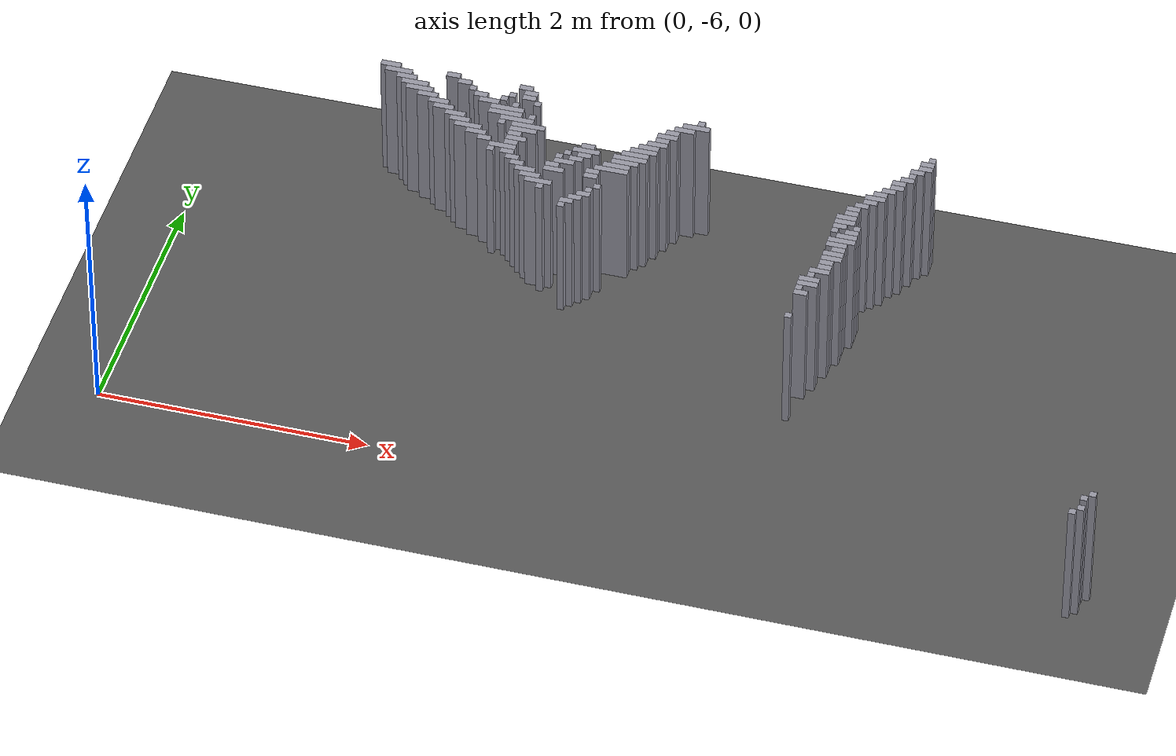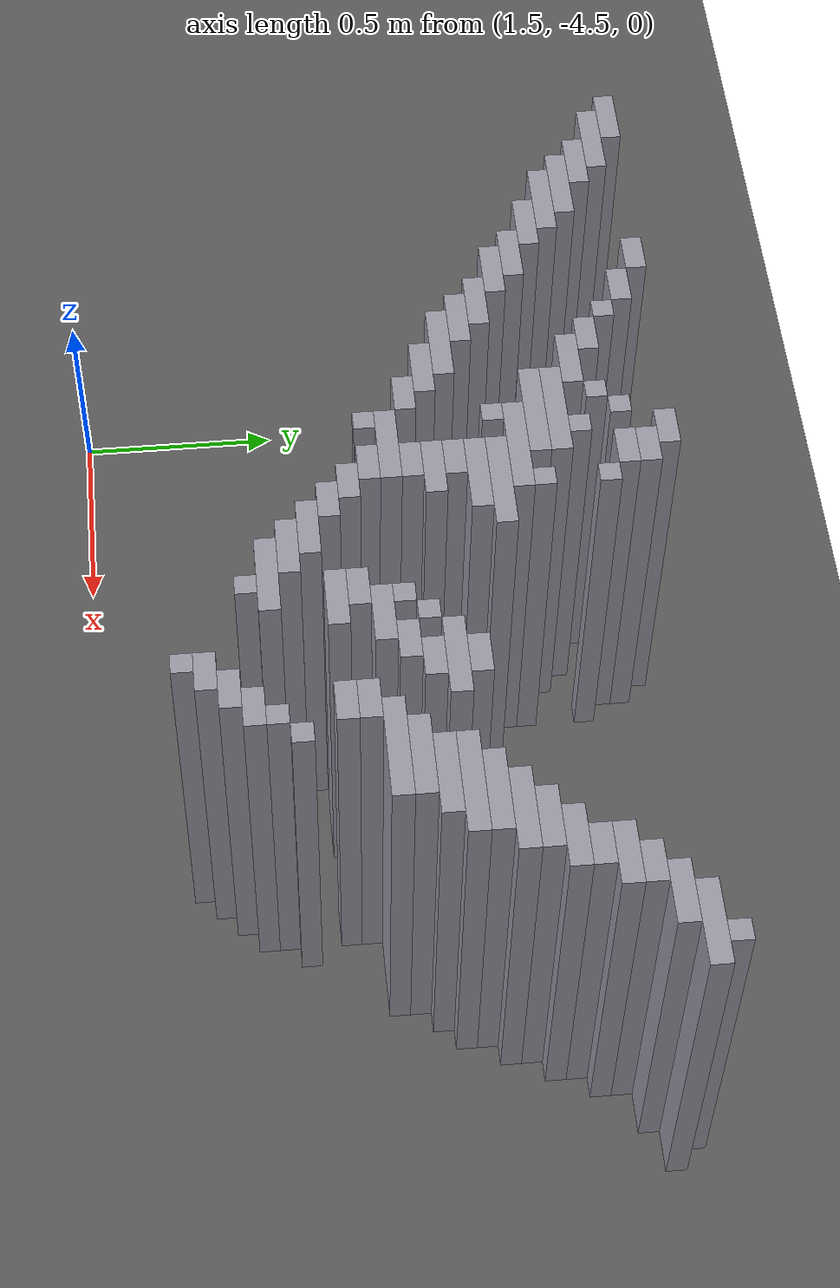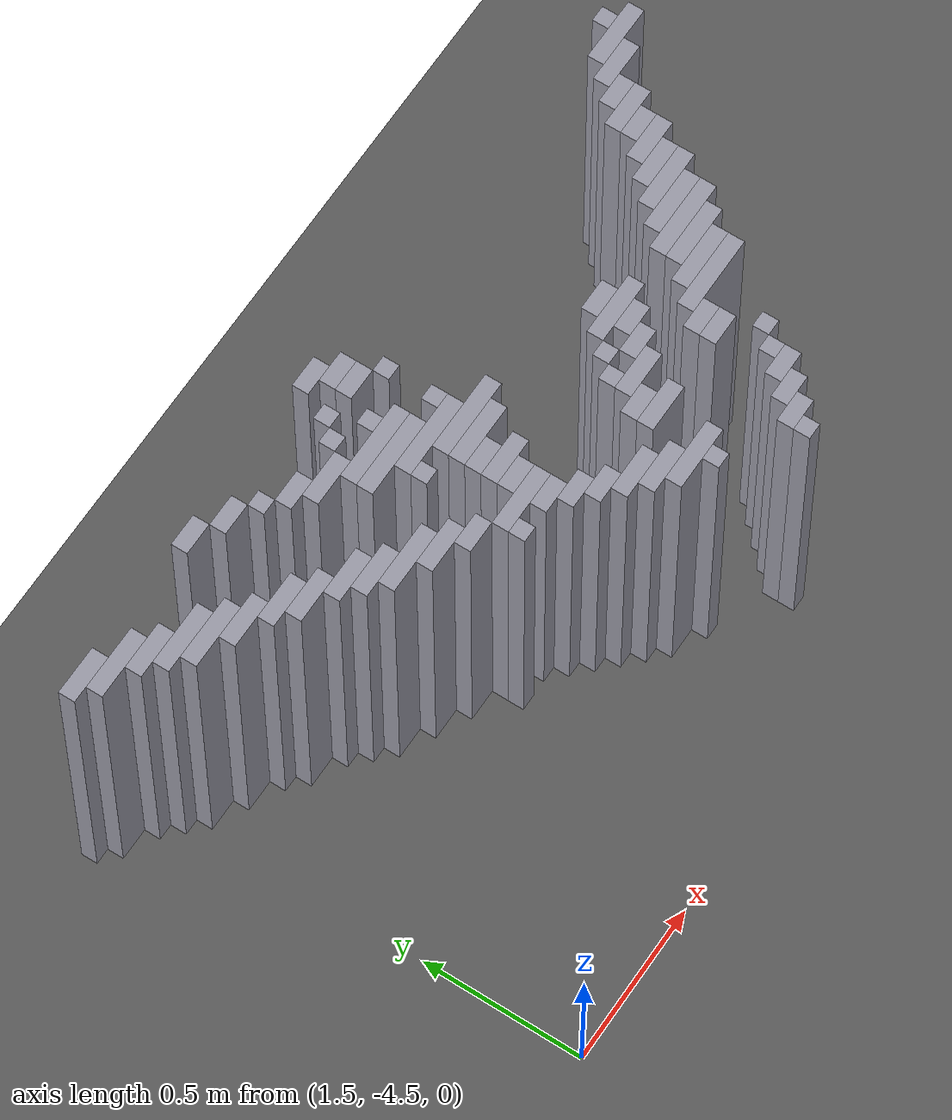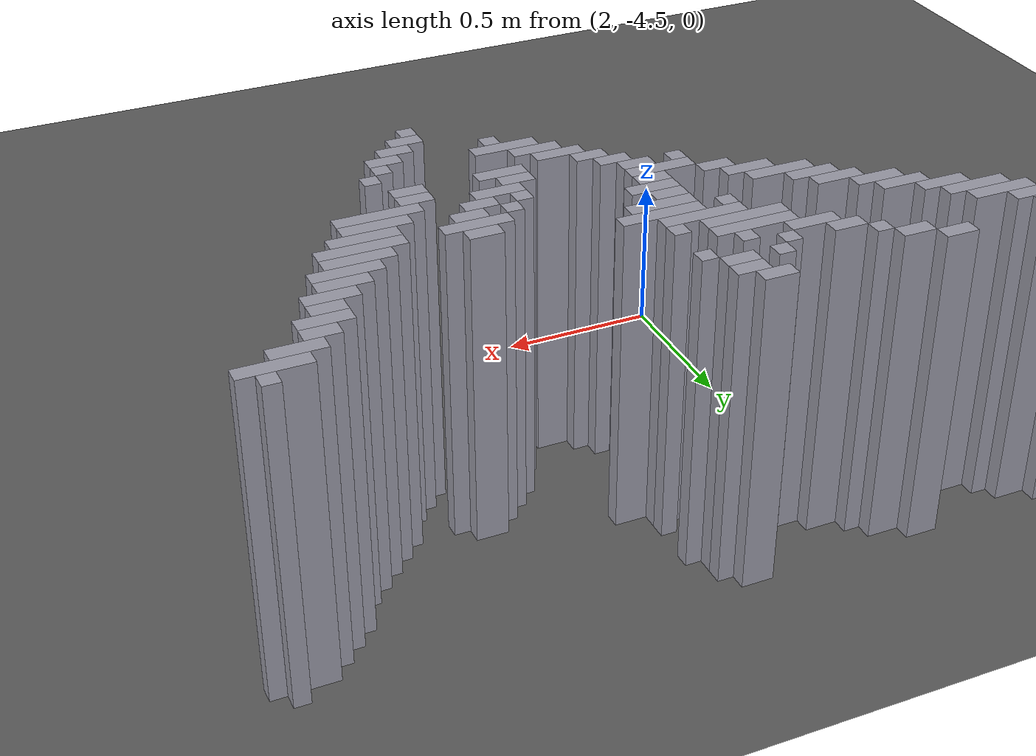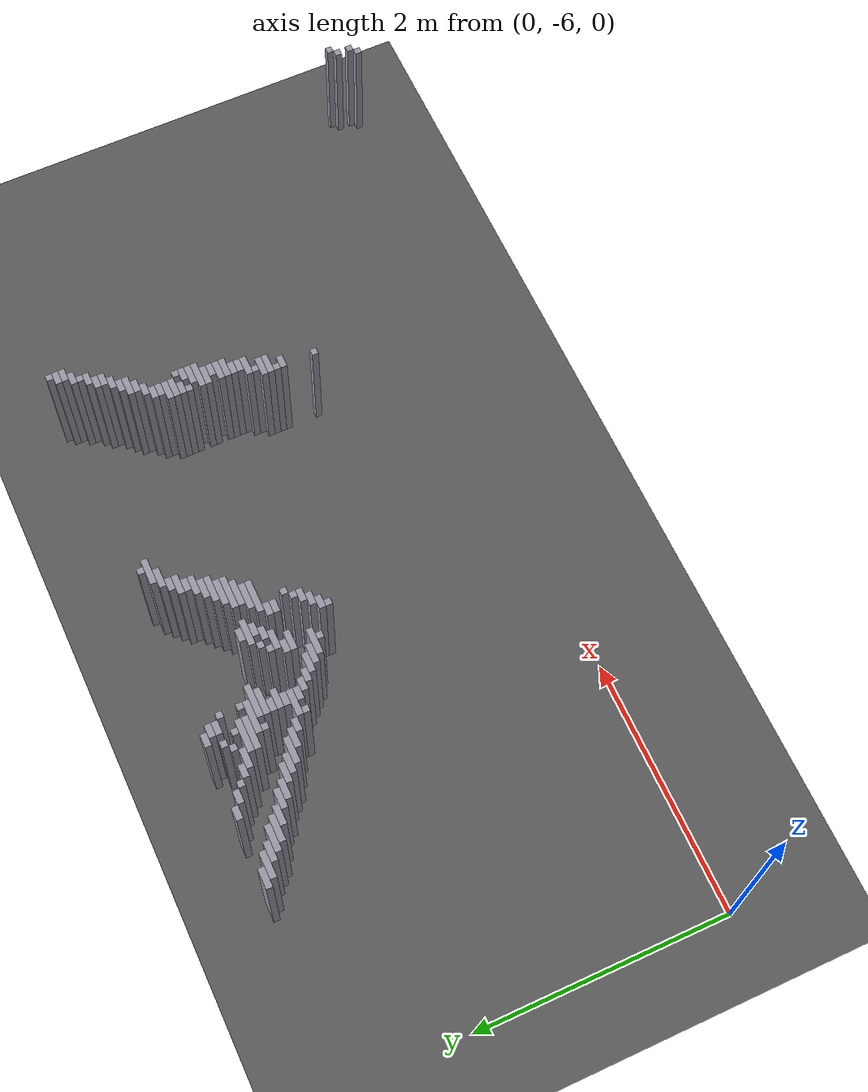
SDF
<sdf version="1.8">
 <world name="dimi">
  <model name="ground">
   <static>true</static>
   <link name="ground_link">
    <collision name="c"><geometry><plane><normal>0 0 1</normal><size>60 60</size></plane></geometry></collision>
    <visual name="v">
     <geometry><plane><normal>0 0 1</normal><size>60 60</size></plane></geometry>
     <material><ambient>0.3 0.3 0.3 1</ambient><diffuse>0.35 0.35 0.35 1</diffuse></material>
    </visual>
   </link>
  </model>
  <model name="walls">
   <static>true</static>
   <link name="wall_413">
    <pose>1.3350 -3.0950 0.5000 0 0 0</pose>
    <collision name="c"><geometry><box><size>0.1500 0.0500 1.0000</size></box></geometry></collision>
    <visual name="v">
     <geometry><box><size>0.1500 0.0500 1.0000</size></box></geometry>
     <material><ambient>0.5 0.5 0.55 1</ambient><diffuse>0.6 0.6 0.65 1</diffuse></material>
    </visual>
   </link>
   <link name="wall_414">
    <pose>1.8100 -3.0950 0.5000 0 0 0</pose>
    <collision name="c"><geometry><box><size>0.1000 0.0500 1.0000</size></box></geometry></collision>
    <visual name="v">
     <geometry><box><size>0.1000 0.0500 1.0000</size></box></geometry>
     <material><ambient>0.5 0.5 0.55 1</ambient><diffuse>0.6 0.6 0.65 1</diffuse></material>
    </visual>
   </link>
   <link name="wall_415">
    <pose>2.3600 -3.0950 0.5000 0 0 0</pose>
    <collision name="c"><geometry><box><size>0.1000 0.0500 1.0000</size></box></geometry></collision>
    <visual name="v">
     <geometry><box><size>0.1000 0.0500 1.0000</size></box></geometry>
     <material><ambient>0.5 0.5 0.55 1</ambient><diffuse>0.6 0.6 0.65 1</diffuse></material>
    </visual>
   </link>
   <link name="wall_416">
    <pose>5.3850 -3.0950 0.5000 0 0 0</pose>
    <collision name="c"><geometry><box><size>0.0500 0.0500 1.0000</size></box></geometry></collision>
    <visual name="v">
     <geometry><box><size>0.0500 0.0500 1.0000</size></box></geometry>
     <material><ambient>0.5 0.5 0.55 1</ambient><diffuse>0.6 0.6 0.65 1</diffuse></material>
    </visual>
   </link>
   <link name="wall_418">
    <pose>1.4100 -3.1450 0.5000 0 0 0</pose>
    <collision name="c"><geometry><box><size>0.2000 0.0500 1.0000</size></box></geometry></collision>
    <visual name="v">
     <geometry><box><size>0.2000 0.0500 1.0000</size></box></geometry>
     <material><ambient>0.5 0.5 0.55 1</ambient><diffuse>0.6 0.6 0.65 1</diffuse></material>
    </visual>
   </link>
   <link name="wall_419">
    <pose>1.9100 -3.1450 0.5000 0 0 0</pose>
    <collision name="c"><geometry><box><size>0.1000 0.0500 1.0000</size></box></geometry></collision>
    <visual name="v">
     <geometry><box><size>0.1000 0.0500 1.0000</size></box></geometry>
     <material><ambient>0.5 0.5 0.55 1</ambient><diffuse>0.6 0.6 0.65 1</diffuse></material>
    </visual>
   </link>
   <link name="wall_420">
    <pose>2.4100 -3.1450 0.5000 0 0 0</pose>
    <collision name="c"><geometry><box><size>0.1000 0.0500 1.0000</size></box></geometry></collision>
    <visual name="v">
     <geometry><box><size>0.1000 0.0500 1.0000</size></box></geometry>
     <material><ambient>0.5 0.5 0.55 1</ambient><diffuse>0.6 0.6 0.65 1</diffuse></material>
    </visual>
   </link>
   <link name="wall_421">
    <pose>3.6850 -3.1450 0.5000 0 0 0</pose>
    <collision name="c"><geometry><box><size>0.0500 0.0500 1.0000</size></box></geometry></collision>
    <visual name="v">
     <geometry><box><size>0.0500 0.0500 1.0000</size></box></geometry>
     <material><ambient>0.5 0.5 0.55 1</ambient><diffuse>0.6 0.6 0.65 1</diffuse></material>
    </visual>
   </link>
   <link name="wall_422">
    <pose>5.3600 -3.1450 0.5000 0 0 0</pose>
    <collision name="c"><geometry><box><size>0.1000 0.0500 1.0000</size></box></geometry></collision>
    <visual name="v">
     <geometry><box><size>0.1000 0.0500 1.0000</size></box></geometry>
     <material><ambient>0.5 0.5 0.55 1</ambient><diffuse>0.6 0.6 0.65 1</diffuse></material>
    </visual>
   </link>
   <link name="wall_427">
    <pose>1.4850 -3.1950 0.5000 0 0 0</pose>
    <collision name="c"><geometry><box><size>0.1500 0.0500 1.0000</size></box></geometry></collision>
    <visual name="v">
     <geometry><box><size>0.1500 0.0500 1.0000</size></box></geometry>
     <material><ambient>0.5 0.5 0.55 1</ambient><diffuse>0.6 0.6 0.65 1</diffuse></material>
    </visual>
   </link>
   <link name="wall_428">
    <pose>1.9850 -3.1950 0.5000 0 0 0</pose>
    <collision name="c"><geometry><box><size>0.0500 0.0500 1.0000</size></box></geometry></collision>
    <visual name="v">
     <geometry><box><size>0.0500 0.0500 1.0000</size></box></geometry>
     <material><ambient>0.5 0.5 0.55 1</ambient><diffuse>0.6 0.6 0.65 1</diffuse></material>
    </visual>
   </link>
   <link name="wall_429">
    <pose>2.2850 -3.1950 0.5000 0 0 0</pose>
    <collision name="c"><geometry><box><size>0.0500 0.0500 1.0000</size></box></geometry></collision>
    <visual name="v">
     <geometry><box><size>0.0500 0.0500 1.0000</size></box></geometry>
     <material><ambient>0.5 0.5 0.55 1</ambient><diffuse>0.6 0.6 0.65 1</diffuse></material>
    </visual>
   </link>
   <link name="wall_430">
    <pose>2.4100 -3.1950 0.5000 0 0 0</pose>
    <collision name="c"><geometry><box><size>0.1000 0.0500 1.0000</size></box></geometry></collision>
    <visual name="v">
     <geometry><box><size>0.1000 0.0500 1.0000</size></box></geometry>
     <material><ambient>0.5 0.5 0.55 1</ambient><diffuse>0.6 0.6 0.65 1</diffuse></material>
    </visual>
   </link>
   <link name="wall_431">
    <pose>3.6600 -3.1950 0.5000 0 0 0</pose>
    <collision name="c"><geometry><box><size>0.2000 0.0500 1.0000</size></box></geometry></collision>
    <visual name="v">
     <geometry><box><size>0.2000 0.0500 1.0000</size></box></geometry>
     <material><ambient>0.5 0.5 0.55 1</ambient><diffuse>0.6 0.6 0.65 1</diffuse></material>
    </visual>
   </link>
   <link name="wall_432">
    <pose>5.3600 -3.1950 0.5000 0 0 0</pose>
    <collision name="c"><geometry><box><size>0.1000 0.0500 1.0000</size></box></geometry></collision>
    <visual name="v">
     <geometry><box><size>0.1000 0.0500 1.0000</size></box></geometry>
     <material><ambient>0.5 0.5 0.55 1</ambient><diffuse>0.6 0.6 0.65 1</diffuse></material>
    </visual>
   </link>
   <link name="wall_437">
    <pose>1.5600 -3.2450 0.5000 0 0 0</pose>
    <collision name="c"><geometry><box><size>0.2000 0.0500 1.0000</size></box></geometry></collision>
    <visual name="v">
     <geometry><box><size>0.2000 0.0500 1.0000</size></box></geometry>
     <material><ambient>0.5 0.5 0.55 1</ambient><diffuse>0.6 0.6 0.65 1</diffuse></material>
    </visual>
   </link>
   <link name="wall_438">
    <pose>2.0600 -3.2450 0.5000 0 0 0</pose>
    <collision name="c"><geometry><box><size>0.1000 0.0500 1.0000</size></box></geometry></collision>
    <visual name="v">
     <geometry><box><size>0.1000 0.0500 1.0000</size></box></geometry>
     <material><ambient>0.5 0.5 0.55 1</ambient><diffuse>0.6 0.6 0.65 1</diffuse></material>
    </visual>
   </link>
   <link name="wall_439">
    <pose>2.2350 -3.2450 0.5000 0 0 0</pose>
    <collision name="c"><geometry><box><size>0.0500 0.0500 1.0000</size></box></geometry></collision>
    <visual name="v">
     <geometry><box><size>0.0500 0.0500 1.0000</size></box></geometry>
     <material><ambient>0.5 0.5 0.55 1</ambient><diffuse>0.6 0.6 0.65 1</diffuse></material>
    </visual>
   </link>
   <link name="wall_440">
    <pose>2.4850 -3.2450 0.5000 0 0 0</pose>
    <collision name="c"><geometry><box><size>0.0500 0.0500 1.0000</size></box></geometry></collision>
    <visual name="v">
     <geometry><box><size>0.0500 0.0500 1.0000</size></box></geometry>
     <material><ambient>0.5 0.5 0.55 1</ambient><diffuse>0.6 0.6 0.65 1</diffuse></material>
    </visual>
   </link>
   <link name="wall_441">
    <pose>3.5850 -3.2450 0.5000 0 0 0</pose>
    <collision name="c"><geometry><box><size>0.1500 0.0500 1.0000</size></box></geometry></collision>
    <visual name="v">
     <geometry><box><size>0.1500 0.0500 1.0000</size></box></geometry>
     <material><ambient>0.5 0.5 0.55 1</ambient><diffuse>0.6 0.6 0.65 1</diffuse></material>
    </visual>
   </link>
   <link name="wall_442">
    <pose>5.3100 -3.2450 0.5000 0 0 0</pose>
    <collision name="c"><geometry><box><size>0.1000 0.0500 1.0000</size></box></geometry></collision>
    <visual name="v">
     <geometry><box><size>0.1000 0.0500 1.0000</size></box></geometry>
     <material><ambient>0.5 0.5 0.55 1</ambient><diffuse>0.6 0.6 0.65 1</diffuse></material>
    </visual>
   </link>
   <link name="wall_447">
    <pose>1.6100 -3.2950 0.5000 0 0 0</pose>
    <collision name="c"><geometry><box><size>0.2000 0.0500 1.0000</size></box></geometry></collision>
    <visual name="v">
     <geometry><box><size>0.2000 0.0500 1.0000</size></box></geometry>
     <material><ambient>0.5 0.5 0.55 1</ambient><diffuse>0.6 0.6 0.65 1</diffuse></material>
    </visual>
   </link>
   <link name="wall_448">
    <pose>2.1350 -3.2950 0.5000 0 0 0</pose>
    <collision name="c"><geometry><box><size>0.1500 0.0500 1.0000</size></box></geometry></collision>
    <visual name="v">
     <geometry><box><size>0.1500 0.0500 1.0000</size></box></geometry>
     <material><ambient>0.5 0.5 0.55 1</ambient><diffuse>0.6 0.6 0.65 1</diffuse></material>
    </visual>
   </link>
   <link name="wall_449">
    <pose>2.3350 -3.2950 0.5000 0 0 0</pose>
    <collision name="c"><geometry><box><size>0.0500 0.0500 1.0000</size></box></geometry></collision>
    <visual name="v">
     <geometry><box><size>0.0500 0.0500 1.0000</size></box></geometry>
     <material><ambient>0.5 0.5 0.55 1</ambient><diffuse>0.6 0.6 0.65 1</diffuse></material>
    </visual>
   </link>
   <link name="wall_450">
    <pose>3.5100 -3.2950 0.5000 0 0 0</pose>
    <collision name="c"><geometry><box><size>0.1000 0.0500 1.0000</size></box></geometry></collision>
    <visual name="v">
     <geometry><box><size>0.1000 0.0500 1.0000</size></box></geometry>
     <material><ambient>0.5 0.5 0.55 1</ambient><diffuse>0.6 0.6 0.65 1</diffuse></material>
    </visual>
   </link>
   <link name="wall_451">
    <pose>5.2850 -3.2950 0.5000 0 0 0</pose>
    <collision name="c"><geometry><box><size>0.0500 0.0500 1.0000</size></box></geometry></collision>
    <visual name="v">
     <geometry><box><size>0.0500 0.0500 1.0000</size></box></geometry>
     <material><ambient>0.5 0.5 0.55 1</ambient><diffuse>0.6 0.6 0.65 1</diffuse></material>
    </visual>
   </link>
   <link name="wall_455">
    <pose>1.6850 -3.3450 0.5000 0 0 0</pose>
    <collision name="c"><geometry><box><size>0.1500 0.0500 1.0000</size></box></geometry></collision>
    <visual name="v">
     <geometry><box><size>0.1500 0.0500 1.0000</size></box></geometry>
     <material><ambient>0.5 0.5 0.55 1</ambient><diffuse>0.6 0.6 0.65 1</diffuse></material>
    </visual>
   </link>
   <link name="wall_456">
    <pose>2.2850 -3.3450 0.5000 0 0 0</pose>
    <collision name="c"><geometry><box><size>0.2500 0.0500 1.0000</size></box></geometry></collision>
    <visual name="v">
     <geometry><box><size>0.2500 0.0500 1.0000</size></box></geometry>
     <material><ambient>0.5 0.5 0.55 1</ambient><diffuse>0.6 0.6 0.65 1</diffuse></material>
    </visual>
   </link>
   <link name="wall_457">
    <pose>3.4850 -3.3450 0.5000 0 0 0</pose>
    <collision name="c"><geometry><box><size>0.1500 0.0500 1.0000</size></box></geometry></collision>
    <visual name="v">
     <geometry><box><size>0.1500 0.0500 1.0000</size></box></geometry>
     <material><ambient>0.5 0.5 0.55 1</ambient><diffuse>0.6 0.6 0.65 1</diffuse></material>
    </visual>
   </link>
   <link name="wall_458">
    <pose>5.2600 -3.3450 0.5000 0 0 0</pose>
    <collision name="c"><geometry><box><size>0.1000 0.0500 1.0000</size></box></geometry></collision>
    <visual name="v">
     <geometry><box><size>0.1000 0.0500 1.0000</size></box></geometry>
     <material><ambient>0.5 0.5 0.55 1</ambient><diffuse>0.6 0.6 0.65 1</diffuse></material>
    </visual>
   </link>
   <link name="wall_463">
    <pose>1.7850 -3.3950 0.5000 0 0 0</pose>
    <collision name="c"><geometry><box><size>0.1500 0.0500 1.0000</size></box></geometry></collision>
    <visual name="v">
     <geometry><box><size>0.1500 0.0500 1.0000</size></box></geometry>
     <material><ambient>0.5 0.5 0.55 1</ambient><diffuse>0.6 0.6 0.65 1</diffuse></material>
    </visual>
   </link>
   <link name="wall_464">
    <pose>2.2850 -3.3950 0.5000 0 0 0</pose>
    <collision name="c"><geometry><box><size>0.2500 0.0500 1.0000</size></box></geometry></collision>
    <visual name="v">
     <geometry><box><size>0.2500 0.0500 1.0000</size></box></geometry>
     <material><ambient>0.5 0.5 0.55 1</ambient><diffuse>0.6 0.6 0.65 1</diffuse></material>
    </visual>
   </link>
   <link name="wall_465">
    <pose>2.4850 -3.3950 0.5000 0 0 0</pose>
    <collision name="c"><geometry><box><size>0.0500 0.0500 1.0000</size></box></geometry></collision>
    <visual name="v">
     <geometry><box><size>0.0500 0.0500 1.0000</size></box></geometry>
     <material><ambient>0.5 0.5 0.55 1</ambient><diffuse>0.6 0.6 0.65 1</diffuse></material>
    </visual>
   </link>
   <link name="wall_466">
    <pose>3.4600 -3.3950 0.5000 0 0 0</pose>
    <collision name="c"><geometry><box><size>0.1000 0.0500 1.0000</size></box></geometry></collision>
    <visual name="v">
     <geometry><box><size>0.1000 0.0500 1.0000</size></box></geometry>
     <material><ambient>0.5 0.5 0.55 1</ambient><diffuse>0.6 0.6 0.65 1</diffuse></material>
    </visual>
   </link>
   <link name="wall_467">
    <pose>5.2100 -3.3950 0.5000 0 0 0</pose>
    <collision name="c"><geometry><box><size>0.1000 0.0500 1.0000</size></box></geometry></collision>
    <visual name="v">
     <geometry><box><size>0.1000 0.0500 1.0000</size></box></geometry>
     <material><ambient>0.5 0.5 0.55 1</ambient><diffuse>0.6 0.6 0.65 1</diffuse></material>
    </visual>
   </link>
   <link name="wall_472">
    <pose>1.8350 -3.4450 0.5000 0 0 0</pose>
    <collision name="c"><geometry><box><size>0.1500 0.0500 1.0000</size></box></geometry></collision>
    <visual name="v">
     <geometry><box><size>0.1500 0.0500 1.0000</size></box></geometry>
     <material><ambient>0.5 0.5 0.55 1</ambient><diffuse>0.6 0.6 0.65 1</diffuse></material>
    </visual>
   </link>
   <link name="wall_473">
    <pose>2.3850 -3.4450 0.5000 0 0 0</pose>
    <collision name="c"><geometry><box><size>0.2500 0.0500 1.0000</size></box></geometry></collision>
    <visual name="v">
     <geometry><box><size>0.2500 0.0500 1.0000</size></box></geometry>
     <material><ambient>0.5 0.5 0.55 1</ambient><diffuse>0.6 0.6 0.65 1</diffuse></material>
    </visual>
   </link>
   <link name="wall_474">
    <pose>3.4350 -3.4450 0.5000 0 0 0</pose>
    <collision name="c"><geometry><box><size>0.1500 0.0500 1.0000</size></box></geometry></collision>
    <visual name="v">
     <geometry><box><size>0.1500 0.0500 1.0000</size></box></geometry>
     <material><ambient>0.5 0.5 0.55 1</ambient><diffuse>0.6 0.6 0.65 1</diffuse></material>
    </visual>
   </link>
   <link name="wall_475">
    <pose>5.2100 -3.4450 0.5000 0 0 0</pose>
    <collision name="c"><geometry><box><size>0.1000 0.0500 1.0000</size></box></geometry></collision>
    <visual name="v">
     <geometry><box><size>0.1000 0.0500 1.0000</size></box></geometry>
     <material><ambient>0.5 0.5 0.55 1</ambient><diffuse>0.6 0.6 0.65 1</diffuse></material>
    </visual>
   </link>
   <link name="wall_480">
    <pose>1.9350 -3.4950 0.5000 0 0 0</pose>
    <collision name="c"><geometry><box><size>0.1500 0.0500 1.0000</size></box></geometry></collision>
    <visual name="v">
     <geometry><box><size>0.1500 0.0500 1.0000</size></box></geometry>
     <material><ambient>0.5 0.5 0.55 1</ambient><diffuse>0.6 0.6 0.65 1</diffuse></material>
    </visual>
   </link>
   <link name="wall_481">
    <pose>2.2850 -3.4950 0.5000 0 0 0</pose>
    <collision name="c"><geometry><box><size>0.0500 0.0500 1.0000</size></box></geometry></collision>
    <visual name="v">
     <geometry><box><size>0.0500 0.0500 1.0000</size></box></geometry>
     <material><ambient>0.5 0.5 0.55 1</ambient><diffuse>0.6 0.6 0.65 1</diffuse></material>
    </visual>
   </link>
   <link name="wall_482">
    <pose>2.4850 -3.4950 0.5000 0 0 0</pose>
    <collision name="c"><geometry><box><size>0.2500 0.0500 1.0000</size></box></geometry></collision>
    <visual name="v">
     <geometry><box><size>0.2500 0.0500 1.0000</size></box></geometry>
     <material><ambient>0.5 0.5 0.55 1</ambient><diffuse>0.6 0.6 0.65 1</diffuse></material>
    </visual>
   </link>
   <link name="wall_483">
    <pose>3.3850 -3.4950 0.5000 0 0 0</pose>
    <collision name="c"><geometry><box><size>0.1500 0.0500 1.0000</size></box></geometry></collision>
    <visual name="v">
     <geometry><box><size>0.1500 0.0500 1.0000</size></box></geometry>
     <material><ambient>0.5 0.5 0.55 1</ambient><diffuse>0.6 0.6 0.65 1</diffuse></material>
    </visual>
   </link>
   <link name="wall_484">
    <pose>5.1600 -3.4950 0.5000 0 0 0</pose>
    <collision name="c"><geometry><box><size>0.1000 0.0500 1.0000</size></box></geometry></collision>
    <visual name="v">
     <geometry><box><size>0.1000 0.0500 1.0000</size></box></geometry>
     <material><ambient>0.5 0.5 0.55 1</ambient><diffuse>0.6 0.6 0.65 1</diffuse></material>
    </visual>
   </link>
   <link name="wall_487">
    <pose>1.9850 -3.5450 0.5000 0 0 0</pose>
    <collision name="c"><geometry><box><size>0.1500 0.0500 1.0000</size></box></geometry></collision>
    <visual name="v">
     <geometry><box><size>0.1500 0.0500 1.0000</size></box></geometry>
     <material><ambient>0.5 0.5 0.55 1</ambient><diffuse>0.6 0.6 0.65 1</diffuse></material>
    </visual>
   </link>
   <link name="wall_488">
    <pose>2.4600 -3.5450 0.5000 0 0 0</pose>
    <collision name="c"><geometry><box><size>0.2000 0.0500 1.0000</size></box></geometry></collision>
    <visual name="v">
     <geometry><box><size>0.2000 0.0500 1.0000</size></box></geometry>
     <material><ambient>0.5 0.5 0.55 1</ambient><diffuse>0.6 0.6 0.65 1</diffuse></material>
    </visual>
   </link>
   <link name="wall_489">
    <pose>3.3600 -3.5450 0.5000 0 0 0</pose>
    <collision name="c"><geometry><box><size>0.2000 0.0500 1.0000</size></box></geometry></collision>
    <visual name="v">
     <geometry><box><size>0.2000 0.0500 1.0000</size></box></geometry>
     <material><ambient>0.5 0.5 0.55 1</ambient><diffuse>0.6 0.6 0.65 1</diffuse></material>
    </visual>
   </link>
   <link name="wall_490">
    <pose>5.1100 -3.5450 0.5000 0 0 0</pose>
    <collision name="c"><geometry><box><size>0.1000 0.0500 1.0000</size></box></geometry></collision>
    <visual name="v">
     <geometry><box><size>0.1000 0.0500 1.0000</size></box></geometry>
     <material><ambient>0.5 0.5 0.55 1</ambient><diffuse>0.6 0.6 0.65 1</diffuse></material>
    </visual>
   </link>
   <link name="wall_493">
    <pose>2.0600 -3.5950 0.5000 0 0 0</pose>
    <collision name="c"><geometry><box><size>0.2000 0.0500 1.0000</size></box></geometry></collision>
    <visual name="v">
     <geometry><box><size>0.2000 0.0500 1.0000</size></box></geometry>
     <material><ambient>0.5 0.5 0.55 1</ambient><diffuse>0.6 0.6 0.65 1</diffuse></material>
    </visual>
   </link>
   <link name="wall_494">
    <pose>2.4100 -3.5950 0.5000 0 0 0</pose>
    <collision name="c"><geometry><box><size>0.1000 0.0500 1.0000</size></box></geometry></collision>
    <visual name="v">
     <geometry><box><size>0.1000 0.0500 1.0000</size></box></geometry>
     <material><ambient>0.5 0.5 0.55 1</ambient><diffuse>0.6 0.6 0.65 1</diffuse></material>
    </visual>
   </link>
   <link name="wall_495">
    <pose>2.9600 -3.5950 0.5000 0 0 0</pose>
    <collision name="c"><geometry><box><size>0.1000 0.0500 1.0000</size></box></geometry></collision>
    <visual name="v">
     <geometry><box><size>0.1000 0.0500 1.0000</size></box></geometry>
     <material><ambient>0.5 0.5 0.55 1</ambient><diffuse>0.6 0.6 0.65 1</diffuse></material>
    </visual>
   </link>
   <link name="wall_496">
    <pose>3.3100 -3.5950 0.5000 0 0 0</pose>
    <collision name="c"><geometry><box><size>0.2000 0.0500 1.0000</size></box></geometry></collision>
    <visual name="v">
     <geometry><box><size>0.2000 0.0500 1.0000</size></box></geometry>
     <material><ambient>0.5 0.5 0.55 1</ambient><diffuse>0.6 0.6 0.65 1</diffuse></material>
    </visual>
   </link>
   <link name="wall_497">
    <pose>5.0850 -3.5950 0.5000 0 0 0</pose>
    <collision name="c"><geometry><box><size>0.1500 0.0500 1.0000</size></box></geometry></collision>
    <visual name="v">
     <geometry><box><size>0.1500 0.0500 1.0000</size></box></geometry>
     <material><ambient>0.5 0.5 0.55 1</ambient><diffuse>0.6 0.6 0.65 1</diffuse></material>
    </visual>
   </link>
   <link name="wall_501">
    <pose>2.1350 -3.6450 0.5000 0 0 0</pose>
    <collision name="c"><geometry><box><size>0.1500 0.0500 1.0000</size></box></geometry></collision>
    <visual name="v">
     <geometry><box><size>0.1500 0.0500 1.0000</size></box></geometry>
     <material><ambient>0.5 0.5 0.55 1</ambient><diffuse>0.6 0.6 0.65 1</diffuse></material>
    </visual>
   </link>
   <link name="wall_502">
    <pose>2.4350 -3.6450 0.5000 0 0 0</pose>
    <collision name="c"><geometry><box><size>0.1500 0.0500 1.0000</size></box></geometry></collision>
    <visual name="v">
     <geometry><box><size>0.1500 0.0500 1.0000</size></box></geometry>
     <material><ambient>0.5 0.5 0.55 1</ambient><diffuse>0.6 0.6 0.65 1</diffuse></material>
    </visual>
   </link>
   <link name="wall_503">
    <pose>2.9600 -3.6450 0.5000 0 0 0</pose>
    <collision name="c"><geometry><box><size>0.2000 0.0500 1.0000</size></box></geometry></collision>
    <visual name="v">
     <geometry><box><size>0.2000 0.0500 1.0000</size></box></geometry>
     <material><ambient>0.5 0.5 0.55 1</ambient><diffuse>0.6 0.6 0.65 1</diffuse></material>
    </visual>
   </link>
   <link name="wall_504">
    <pose>3.2850 -3.6450 0.5000 0 0 0</pose>
    <collision name="c"><geometry><box><size>0.2500 0.0500 1.0000</size></box></geometry></collision>
    <visual name="v">
     <geometry><box><size>0.2500 0.0500 1.0000</size></box></geometry>
     <material><ambient>0.5 0.5 0.55 1</ambient><diffuse>0.6 0.6 0.65 1</diffuse></material>
    </visual>
   </link>
   <link name="wall_505">
    <pose>5.0600 -3.6450 0.5000 0 0 0</pose>
    <collision name="c"><geometry><box><size>0.1000 0.0500 1.0000</size></box></geometry></collision>
    <visual name="v">
     <geometry><box><size>0.1000 0.0500 1.0000</size></box></geometry>
     <material><ambient>0.5 0.5 0.55 1</ambient><diffuse>0.6 0.6 0.65 1</diffuse></material>
    </visual>
   </link>
   <link name="wall_507">
    <pose>2.2100 -3.6950 0.5000 0 0 0</pose>
    <collision name="c"><geometry><box><size>0.1000 0.0500 1.0000</size></box></geometry></collision>
    <visual name="v">
     <geometry><box><size>0.1000 0.0500 1.0000</size></box></geometry>
     <material><ambient>0.5 0.5 0.55 1</ambient><diffuse>0.6 0.6 0.65 1</diffuse></material>
    </visual>
   </link>
   <link name="wall_508">
    <pose>2.4100 -3.6950 0.5000 0 0 0</pose>
    <collision name="c"><geometry><box><size>0.1000 0.0500 1.0000</size></box></geometry></collision>
    <visual name="v">
     <geometry><box><size>0.1000 0.0500 1.0000</size></box></geometry>
     <material><ambient>0.5 0.5 0.55 1</ambient><diffuse>0.6 0.6 0.65 1</diffuse></material>
    </visual>
   </link>
   <link name="wall_509">
    <pose>2.8350 -3.6950 0.5000 0 0 0</pose>
    <collision name="c"><geometry><box><size>0.0500 0.0500 1.0000</size></box></geometry></collision>
    <visual name="v">
     <geometry><box><size>0.0500 0.0500 1.0000</size></box></geometry>
     <material><ambient>0.5 0.5 0.55 1</ambient><diffuse>0.6 0.6 0.65 1</diffuse></material>
    </visual>
   </link>
   <link name="wall_510">
    <pose>2.9600 -3.6950 0.5000 0 0 0</pose>
    <collision name="c"><geometry><box><size>0.1000 0.0500 1.0000</size></box></geometry></collision>
    <visual name="v">
     <geometry><box><size>0.1000 0.0500 1.0000</size></box></geometry>
     <material><ambient>0.5 0.5 0.55 1</ambient><diffuse>0.6 0.6 0.65 1</diffuse></material>
    </visual>
   </link>
   <link name="wall_511">
    <pose>3.2600 -3.6950 0.5000 0 0 0</pose>
    <collision name="c"><geometry><box><size>0.2000 0.0500 1.0000</size></box></geometry></collision>
    <visual name="v">
     <geometry><box><size>0.2000 0.0500 1.0000</size></box></geometry>
     <material><ambient>0.5 0.5 0.55 1</ambient><diffuse>0.6 0.6 0.65 1</diffuse></material>
    </visual>
   </link>
   <link name="wall_512">
    <pose>5.0100 -3.6950 0.5000 0 0 0</pose>
    <collision name="c"><geometry><box><size>0.1000 0.0500 1.0000</size></box></geometry></collision>
    <visual name="v">
     <geometry><box><size>0.1000 0.0500 1.0000</size></box></geometry>
     <material><ambient>0.5 0.5 0.55 1</ambient><diffuse>0.6 0.6 0.65 1</diffuse></material>
    </visual>
   </link>
   <link name="wall_514">
    <pose>2.3600 -3.7450 0.5000 0 0 0</pose>
    <collision name="c"><geometry><box><size>0.2000 0.0500 1.0000</size></box></geometry></collision>
    <visual name="v">
     <geometry><box><size>0.2000 0.0500 1.0000</size></box></geometry>
     <material><ambient>0.5 0.5 0.55 1</ambient><diffuse>0.6 0.6 0.65 1</diffuse></material>
    </visual>
   </link>
   <link name="wall_515">
    <pose>2.7850 -3.7450 0.5000 0 0 0</pose>
    <collision name="c"><geometry><box><size>0.0500 0.0500 1.0000</size></box></geometry></collision>
    <visual name="v">
     <geometry><box><size>0.0500 0.0500 1.0000</size></box></geometry>
     <material><ambient>0.5 0.5 0.55 1</ambient><diffuse>0.6 0.6 0.65 1</diffuse></material>
    </visual>
   </link>
   <link name="wall_516">
    <pose>2.9100 -3.7450 0.5000 0 0 0</pose>
    <collision name="c"><geometry><box><size>0.1000 0.0500 1.0000</size></box></geometry></collision>
    <visual name="v">
     <geometry><box><size>0.1000 0.0500 1.0000</size></box></geometry>
     <material><ambient>0.5 0.5 0.55 1</ambient><diffuse>0.6 0.6 0.65 1</diffuse></material>
    </visual>
   </link>
   <link name="wall_517">
    <pose>3.2100 -3.7450 0.5000 0 0 0</pose>
    <collision name="c"><geometry><box><size>0.2000 0.0500 1.0000</size></box></geometry></collision>
    <visual name="v">
     <geometry><box><size>0.2000 0.0500 1.0000</size></box></geometry>
     <material><ambient>0.5 0.5 0.55 1</ambient><diffuse>0.6 0.6 0.65 1</diffuse></material>
    </visual>
   </link>
   <link name="wall_518">
    <pose>4.9600 -3.7450 0.5000 0 0 0</pose>
    <collision name="c"><geometry><box><size>0.1000 0.0500 1.0000</size></box></geometry></collision>
    <visual name="v">
     <geometry><box><size>0.1000 0.0500 1.0000</size></box></geometry>
     <material><ambient>0.5 0.5 0.55 1</ambient><diffuse>0.6 0.6 0.65 1</diffuse></material>
    </visual>
   </link>
   <link name="wall_519">
    <pose>2.2850 -3.7950 0.5000 0 0 0</pose>
    <collision name="c"><geometry><box><size>0.0500 0.0500 1.0000</size></box></geometry></collision>
    <visual name="v">
     <geometry><box><size>0.0500 0.0500 1.0000</size></box></geometry>
     <material><ambient>0.5 0.5 0.55 1</ambient><diffuse>0.6 0.6 0.65 1</diffuse></material>
    </visual>
   </link>
   <link name="wall_520">
    <pose>2.4100 -3.7950 0.5000 0 0 0</pose>
    <collision name="c"><geometry><box><size>0.1000 0.0500 1.0000</size></box></geometry></collision>
    <visual name="v">
     <geometry><box><size>0.1000 0.0500 1.0000</size></box></geometry>
     <material><ambient>0.5 0.5 0.55 1</ambient><diffuse>0.6 0.6 0.65 1</diffuse></material>
    </visual>
   </link>
   <link name="wall_521">
    <pose>2.8350 -3.7950 0.5000 0 0 0</pose>
    <collision name="c"><geometry><box><size>0.1500 0.0500 1.0000</size></box></geometry></collision>
    <visual name="v">
     <geometry><box><size>0.1500 0.0500 1.0000</size></box></geometry>
     <material><ambient>0.5 0.5 0.55 1</ambient><diffuse>0.6 0.6 0.65 1</diffuse></material>
    </visual>
   </link>
   <link name="wall_522">
    <pose>3.1850 -3.7950 0.5000 0 0 0</pose>
    <collision name="c"><geometry><box><size>0.2500 0.0500 1.0000</size></box></geometry></collision>
    <visual name="v">
     <geometry><box><size>0.2500 0.0500 1.0000</size></box></geometry>
     <material><ambient>0.5 0.5 0.55 1</ambient><diffuse>0.6 0.6 0.65 1</diffuse></material>
    </visual>
   </link>
   <link name="wall_523">
    <pose>4.9600 -3.7950 0.5000 0 0 0</pose>
    <collision name="c"><geometry><box><size>0.1000 0.0500 1.0000</size></box></geometry></collision>
    <visual name="v">
     <geometry><box><size>0.1000 0.0500 1.0000</size></box></geometry>
     <material><ambient>0.5 0.5 0.55 1</ambient><diffuse>0.6 0.6 0.65 1</diffuse></material>
    </visual>
   </link>
   <link name="wall_524">
    <pose>2.4600 -3.8450 0.5000 0 0 0</pose>
    <collision name="c"><geometry><box><size>0.1000 0.0500 1.0000</size></box></geometry></collision>
    <visual name="v">
     <geometry><box><size>0.1000 0.0500 1.0000</size></box></geometry>
     <material><ambient>0.5 0.5 0.55 1</ambient><diffuse>0.6 0.6 0.65 1</diffuse></material>
    </visual>
   </link>
   <link name="wall_525">
    <pose>2.7600 -3.8450 0.5000 0 0 0</pose>
    <collision name="c"><geometry><box><size>0.1000 0.0500 1.0000</size></box></geometry></collision>
    <visual name="v">
     <geometry><box><size>0.1000 0.0500 1.0000</size></box></geometry>
     <material><ambient>0.5 0.5 0.55 1</ambient><diffuse>0.6 0.6 0.65 1</diffuse></material>
    </visual>
   </link>
   <link name="wall_526">
    <pose>3.0600 -3.8450 0.5000 0 0 0</pose>
    <collision name="c"><geometry><box><size>0.1000 0.0500 1.0000</size></box></geometry></collision>
    <visual name="v">
     <geometry><box><size>0.1000 0.0500 1.0000</size></box></geometry>
     <material><ambient>0.5 0.5 0.55 1</ambient><diffuse>0.6 0.6 0.65 1</diffuse></material>
    </visual>
   </link>
   <link name="wall_527">
    <pose>4.9350 -3.8450 0.5000 0 0 0</pose>
    <collision name="c"><geometry><box><size>0.1500 0.0500 1.0000</size></box></geometry></collision>
    <visual name="v">
     <geometry><box><size>0.1500 0.0500 1.0000</size></box></geometry>
     <material><ambient>0.5 0.5 0.55 1</ambient><diffuse>0.6 0.6 0.65 1</diffuse></material>
    </visual>
   </link>
   <link name="wall_528">
    <pose>2.5100 -3.8950 0.5000 0 0 0</pose>
    <collision name="c"><geometry><box><size>0.1000 0.0500 1.0000</size></box></geometry></collision>
    <visual name="v">
     <geometry><box><size>0.1000 0.0500 1.0000</size></box></geometry>
     <material><ambient>0.5 0.5 0.55 1</ambient><diffuse>0.6 0.6 0.65 1</diffuse></material>
    </visual>
   </link>
   <link name="wall_529">
    <pose>2.7850 -3.8950 0.5000 0 0 0</pose>
    <collision name="c"><geometry><box><size>0.1500 0.0500 1.0000</size></box></geometry></collision>
    <visual name="v">
     <geometry><box><size>0.1500 0.0500 1.0000</size></box></geometry>
     <material><ambient>0.5 0.5 0.55 1</ambient><diffuse>0.6 0.6 0.65 1</diffuse></material>
    </visual>
   </link>
   <link name="wall_530">
    <pose>3.0600 -3.8950 0.5000 0 0 0</pose>
    <collision name="c"><geometry><box><size>0.1000 0.0500 1.0000</size></box></geometry></collision>
    <visual name="v">
     <geometry><box><size>0.1000 0.0500 1.0000</size></box></geometry>
     <material><ambient>0.5 0.5 0.55 1</ambient><diffuse>0.6 0.6 0.65 1</diffuse></material>
    </visual>
   </link>
   <link name="wall_531">
    <pose>4.9350 -3.8950 0.5000 0 0 0</pose>
    <collision name="c"><geometry><box><size>0.1500 0.0500 1.0000</size></box></geometry></collision>
    <visual name="v">
     <geometry><box><size>0.1500 0.0500 1.0000</size></box></geometry>
     <material><ambient>0.5 0.5 0.55 1</ambient><diffuse>0.6 0.6 0.65 1</diffuse></material>
    </visual>
   </link>
   <link name="wall_533">
    <pose>2.5850 -3.9450 0.5000 0 0 0</pose>
    <collision name="c"><geometry><box><size>0.1500 0.0500 1.0000</size></box></geometry></collision>
    <visual name="v">
     <geometry><box><size>0.1500 0.0500 1.0000</size></box></geometry>
     <material><ambient>0.5 0.5 0.55 1</ambient><diffuse>0.6 0.6 0.65 1</diffuse></material>
    </visual>
   </link>
   <link name="wall_534">
    <pose>4.9100 -3.9450 0.5000 0 0 0</pose>
    <collision name="c"><geometry><box><size>0.1000 0.0500 1.0000</size></box></geometry></collision>
    <visual name="v">
     <geometry><box><size>0.1000 0.0500 1.0000</size></box></geometry>
     <material><ambient>0.5 0.5 0.55 1</ambient><diffuse>0.6 0.6 0.65 1</diffuse></material>
    </visual>
   </link>
   <link name="wall_535">
    <pose>5.0350 -3.9450 0.5000 0 0 0</pose>
    <collision name="c"><geometry><box><size>0.0500 0.0500 1.0000</size></box></geometry></collision>
    <visual name="v">
     <geometry><box><size>0.0500 0.0500 1.0000</size></box></geometry>
     <material><ambient>0.5 0.5 0.55 1</ambient><diffuse>0.6 0.6 0.65 1</diffuse></material>
    </visual>
   </link>
   <link name="wall_538">
    <pose>2.6350 -3.9950 0.5000 0 0 0</pose>
    <collision name="c"><geometry><box><size>0.1500 0.0500 1.0000</size></box></geometry></collision>
    <visual name="v">
     <geometry><box><size>0.1500 0.0500 1.0000</size></box></geometry>
     <material><ambient>0.5 0.5 0.55 1</ambient><diffuse>0.6 0.6 0.65 1</diffuse></material>
    </visual>
   </link>
   <link name="wall_539">
    <pose>3.1350 -3.9950 0.5000 0 0 0</pose>
    <collision name="c"><geometry><box><size>0.0500 0.0500 1.0000</size></box></geometry></collision>
    <visual name="v">
     <geometry><box><size>0.0500 0.0500 1.0000</size></box></geometry>
     <material><ambient>0.5 0.5 0.55 1</ambient><diffuse>0.6 0.6 0.65 1</diffuse></material>
    </visual>
   </link>
   <link name="wall_540">
    <pose>4.8850 -3.9950 0.5000 0 0 0</pose>
    <collision name="c"><geometry><box><size>0.0500 0.0500 1.0000</size></box></geometry></collision>
    <visual name="v">
     <geometry><box><size>0.0500 0.0500 1.0000</size></box></geometry>
     <material><ambient>0.5 0.5 0.55 1</ambient><diffuse>0.6 0.6 0.65 1</diffuse></material>
    </visual>
   </link>
   <link name="wall_541">
    <pose>5.0100 -3.9950 0.5000 0 0 0</pose>
    <collision name="c"><geometry><box><size>0.1000 0.0500 1.0000</size></box></geometry></collision>
    <visual name="v">
     <geometry><box><size>0.1000 0.0500 1.0000</size></box></geometry>
     <material><ambient>0.5 0.5 0.55 1</ambient><diffuse>0.6 0.6 0.65 1</diffuse></material>
    </visual>
   </link>
   <link name="wall_544">
    <pose>2.7100 -4.0450 0.5000 0 0 0</pose>
    <collision name="c"><geometry><box><size>0.2000 0.0500 1.0000</size></box></geometry></collision>
    <visual name="v">
     <geometry><box><size>0.2000 0.0500 1.0000</size></box></geometry>
     <material><ambient>0.5 0.5 0.55 1</ambient><diffuse>0.6 0.6 0.65 1</diffuse></material>
    </visual>
   </link>
   <link name="wall_545">
    <pose>3.0850 -4.0450 0.5000 0 0 0</pose>
    <collision name="c"><geometry><box><size>0.0500 0.0500 1.0000</size></box></geometry></collision>
    <visual name="v">
     <geometry><box><size>0.0500 0.0500 1.0000</size></box></geometry>
     <material><ambient>0.5 0.5 0.55 1</ambient><diffuse>0.6 0.6 0.65 1</diffuse></material>
    </visual>
   </link>
   <link name="wall_546">
    <pose>4.9850 -4.0450 0.5000 0 0 0</pose>
    <collision name="c"><geometry><box><size>0.1500 0.0500 1.0000</size></box></geometry></collision>
    <visual name="v">
     <geometry><box><size>0.1500 0.0500 1.0000</size></box></geometry>
     <material><ambient>0.5 0.5 0.55 1</ambient><diffuse>0.6 0.6 0.65 1</diffuse></material>
    </visual>
   </link>
   <link name="wall_549">
    <pose>2.7350 -4.0950 0.5000 0 0 0</pose>
    <collision name="c"><geometry><box><size>0.0500 0.0500 1.0000</size></box></geometry></collision>
    <visual name="v">
     <geometry><box><size>0.0500 0.0500 1.0000</size></box></geometry>
     <material><ambient>0.5 0.5 0.55 1</ambient><diffuse>0.6 0.6 0.65 1</diffuse></material>
    </visual>
   </link>
   <link name="wall_550">
    <pose>3.0600 -4.0950 0.5000 0 0 0</pose>
    <collision name="c"><geometry><box><size>0.1000 0.0500 1.0000</size></box></geometry></collision>
    <visual name="v">
     <geometry><box><size>0.1000 0.0500 1.0000</size></box></geometry>
     <material><ambient>0.5 0.5 0.55 1</ambient><diffuse>0.6 0.6 0.65 1</diffuse></material>
    </visual>
   </link>
   <link name="wall_551">
    <pose>4.9600 -4.0950 0.5000 0 0 0</pose>
    <collision name="c"><geometry><box><size>0.2000 0.0500 1.0000</size></box></geometry></collision>
    <visual name="v">
     <geometry><box><size>0.2000 0.0500 1.0000</size></box></geometry>
     <material><ambient>0.5 0.5 0.55 1</ambient><diffuse>0.6 0.6 0.65 1</diffuse></material>
    </visual>
   </link>
   <link name="wall_553">
    <pose>3.0100 -4.1450 0.5000 0 0 0</pose>
    <collision name="c"><geometry><box><size>0.1000 0.0500 1.0000</size></box></geometry></collision>
    <visual name="v">
     <geometry><box><size>0.1000 0.0500 1.0000</size></box></geometry>
     <material><ambient>0.5 0.5 0.55 1</ambient><diffuse>0.6 0.6 0.65 1</diffuse></material>
    </visual>
   </link>
   <link name="wall_554">
    <pose>4.9350 -4.1450 0.5000 0 0 0</pose>
    <collision name="c"><geometry><box><size>0.1500 0.0500 1.0000</size></box></geometry></collision>
    <visual name="v">
     <geometry><box><size>0.1500 0.0500 1.0000</size></box></geometry>
     <material><ambient>0.5 0.5 0.55 1</ambient><diffuse>0.6 0.6 0.65 1</diffuse></material>
    </visual>
   </link>
   <link name="wall_556">
    <pose>2.9600 -4.1950 0.5000 0 0 0</pose>
    <collision name="c"><geometry><box><size>0.1000 0.0500 1.0000</size></box></geometry></collision>
    <visual name="v">
     <geometry><box><size>0.1000 0.0500 1.0000</size></box></geometry>
     <material><ambient>0.5 0.5 0.55 1</ambient><diffuse>0.6 0.6 0.65 1</diffuse></material>
    </visual>
   </link>
   <link name="wall_557">
    <pose>4.9600 -4.1950 0.5000 0 0 0</pose>
    <collision name="c"><geometry><box><size>0.1000 0.0500 1.0000</size></box></geometry></collision>
    <visual name="v">
     <geometry><box><size>0.1000 0.0500 1.0000</size></box></geometry>
     <material><ambient>0.5 0.5 0.55 1</ambient><diffuse>0.6 0.6 0.65 1</diffuse></material>
    </visual>
   </link>
   <link name="wall_558">
    <pose>2.9350 -4.2450 0.5000 0 0 0</pose>
    <collision name="c"><geometry><box><size>0.0500 0.0500 1.0000</size></box></geometry></collision>
    <visual name="v">
     <geometry><box><size>0.0500 0.0500 1.0000</size></box></geometry>
     <material><ambient>0.5 0.5 0.55 1</ambient><diffuse>0.6 0.6 0.65 1</diffuse></material>
    </visual>
   </link>
   <link name="wall_559">
    <pose>4.9350 -4.2450 0.5000 0 0 0</pose>
    <collision name="c"><geometry><box><size>0.1500 0.0500 1.0000</size></box></geometry></collision>
    <visual name="v">
     <geometry><box><size>0.1500 0.0500 1.0000</size></box></geometry>
     <material><ambient>0.5 0.5 0.55 1</ambient><diffuse>0.6 0.6 0.65 1</diffuse></material>
    </visual>
   </link>
   <link name="wall_560">
    <pose>4.9350 -4.2950 0.5000 0 0 0</pose>
    <collision name="c"><geometry><box><size>0.1500 0.0500 1.0000</size></box></geometry></collision>
    <visual name="v">
     <geometry><box><size>0.1500 0.0500 1.0000</size></box></geometry>
     <material><ambient>0.5 0.5 0.55 1</ambient><diffuse>0.6 0.6 0.65 1</diffuse></material>
    </visual>
   </link>
   <link name="wall_561">
    <pose>4.9100 -4.3450 0.5000 0 0 0</pose>
    <collision name="c"><geometry><box><size>0.1000 0.0500 1.0000</size></box></geometry></collision>
    <visual name="v">
     <geometry><box><size>0.1000 0.0500 1.0000</size></box></geometry>
     <material><ambient>0.5 0.5 0.55 1</ambient><diffuse>0.6 0.6 0.65 1</diffuse></material>
    </visual>
   </link>
   <link name="wall_562">
    <pose>4.9100 -4.3950 0.5000 0 0 0</pose>
    <collision name="c"><geometry><box><size>0.1000 0.0500 1.0000</size></box></geometry></collision>
    <visual name="v">
     <geometry><box><size>0.1000 0.0500 1.0000</size></box></geometry>
     <material><ambient>0.5 0.5 0.55 1</ambient><diffuse>0.6 0.6 0.65 1</diffuse></material>
    </visual>
   </link>
   <link name="wall_563">
    <pose>4.8850 -4.4450 0.5000 0 0 0</pose>
    <collision name="c"><geometry><box><size>0.1500 0.0500 1.0000</size></box></geometry></collision>
    <visual name="v">
     <geometry><box><size>0.1500 0.0500 1.0000</size></box></geometry>
     <material><ambient>0.5 0.5 0.55 1</ambient><diffuse>0.6 0.6 0.65 1</diffuse></material>
    </visual>
   </link>
   <link name="wall_564">
    <pose>4.8350 -4.4950 0.5000 0 0 0</pose>
    <collision name="c"><geometry><box><size>0.0500 0.0500 1.0000</size></box></geometry></collision>
    <visual name="v">
     <geometry><box><size>0.0500 0.0500 1.0000</size></box></geometry>
     <material><ambient>0.5 0.5 0.55 1</ambient><diffuse>0.6 0.6 0.65 1</diffuse></material>
    </visual>
   </link>
   <link name="wall_565">
    <pose>4.8350 -4.5450 0.5000 0 0 0</pose>
    <collision name="c"><geometry><box><size>0.1500 0.0500 1.0000</size></box></geometry></collision>
    <visual name="v">
     <geometry><box><size>0.1500 0.0500 1.0000</size></box></geometry>
     <material><ambient>0.5 0.5 0.55 1</ambient><diffuse>0.6 0.6 0.65 1</diffuse></material>
    </visual>
   </link>
   <link name="wall_566">
    <pose>4.8350 -4.5950 0.5000 0 0 0</pose>
    <collision name="c"><geometry><box><size>0.1500 0.0500 1.0000</size></box></geometry></collision>
    <visual name="v">
     <geometry><box><size>0.1500 0.0500 1.0000</size></box></geometry>
     <material><ambient>0.5 0.5 0.55 1</ambient><diffuse>0.6 0.6 0.65 1</diffuse></material>
    </visual>
   </link>
   <link name="wall_567">
    <pose>4.7850 -4.6450 0.5000 0 0 0</pose>
    <collision name="c"><geometry><box><size>0.0500 0.0500 1.0000</size></box></geometry></collision>
    <visual name="v">
     <geometry><box><size>0.0500 0.0500 1.0000</size></box></geometry>
     <material><ambient>0.5 0.5 0.55 1</ambient><diffuse>0.6 0.6 0.65 1</diffuse></material>
    </visual>
   </link>
   <link name="wall_568">
    <pose>4.8100 -4.6950 0.5000 0 0 0</pose>
    <collision name="c"><geometry><box><size>0.1000 0.0500 1.0000</size></box></geometry></collision>
    <visual name="v">
     <geometry><box><size>0.1000 0.0500 1.0000</size></box></geometry>
     <material><ambient>0.5 0.5 0.55 1</ambient><diffuse>0.6 0.6 0.65 1</diffuse></material>
    </visual>
   </link>
   <link name="wall_569">
    <pose>4.7850 -4.9450 0.5000 0 0 0</pose>
    <collision name="c"><geometry><box><size>0.0500 0.0500 1.0000</size></box></geometry></collision>
    <visual name="v">
     <geometry><box><size>0.0500 0.0500 1.0000</size></box></geometry>
     <material><ambient>0.5 0.5 0.55 1</ambient><diffuse>0.6 0.6 0.65 1</diffuse></material>
    </visual>
   </link>
   <link name="wall_570">
    <pose>7.2350 -6.1450 0.5000 0 0 0</pose>
    <collision name="c"><geometry><box><size>0.0500 0.0500 1.0000</size></box></geometry></collision>
    <visual name="v">
     <geometry><box><size>0.0500 0.0500 1.0000</size></box></geometry>
     <material><ambient>0.5 0.5 0.55 1</ambient><diffuse>0.6 0.6 0.65 1</diffuse></material>
    </visual>
   </link>
   <link name="wall_571">
    <pose>7.1850 -6.1950 0.5000 0 0 0</pose>
    <collision name="c"><geometry><box><size>0.0500 0.0500 1.0000</size></box></geometry></collision>
    <visual name="v">
     <geometry><box><size>0.0500 0.0500 1.0000</size></box></geometry>
     <material><ambient>0.5 0.5 0.55 1</ambient><diffuse>0.6 0.6 0.65 1</diffuse></material>
    </visual>
   </link>
   <link name="wall_572">
    <pose>7.1850 -6.2950 0.5000 0 0 0</pose>
    <collision name="c"><geometry><box><size>0.0500 0.0500 1.0000</size></box></geometry></collision>
    <visual name="v">
     <geometry><box><size>0.0500 0.0500 1.0000</size></box></geometry>
     <material><ambient>0.5 0.5 0.55 1</ambient><diffuse>0.6 0.6 0.65 1</diffuse></material>
    </visual>
   </link>
   <link name="wall_573">
    <pose>7.1350 -6.3450 0.5000 0 0 0</pose>
    <collision name="c"><geometry><box><size>0.0500 0.0500 1.0000</size></box></geometry></collision>
    <visual name="v">
     <geometry><box><size>0.0500 0.0500 1.0000</size></box></geometry>
     <material><ambient>0.5 0.5 0.55 1</ambient><diffuse>0.6 0.6 0.65 1</diffuse></material>
    </visual>
   </link>
  </model>
 </world>
</sdf>
